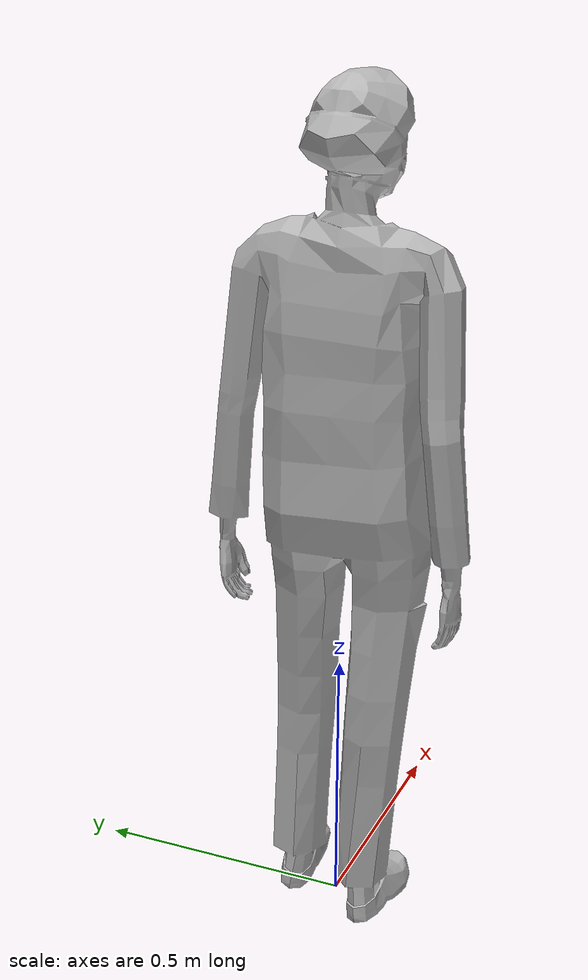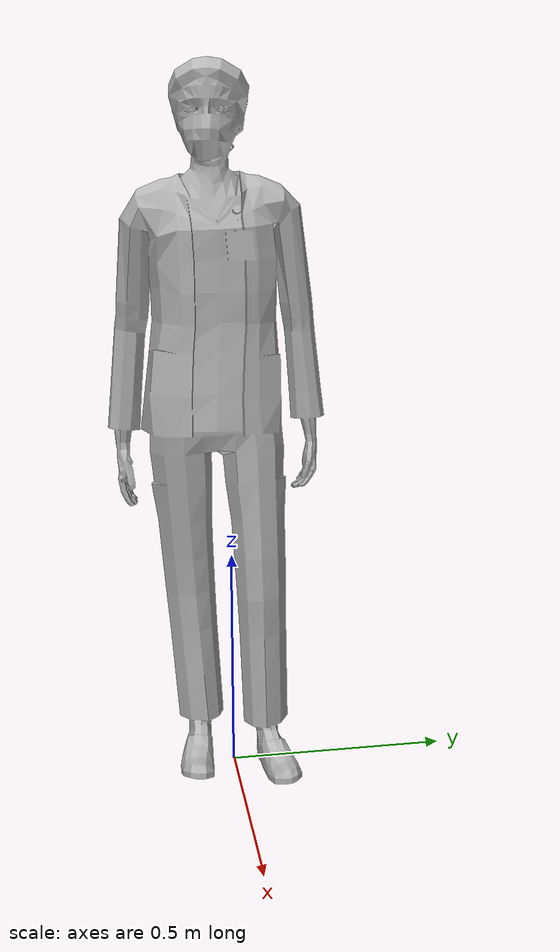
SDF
<?xml version='1.0' encoding='utf-8'?>
<sdf version="1.6">
  <model name="OpScrubs">
   <static>true</static>
    <link name="body">
      <pose>0 0 0 0 0 0</pose>

      <visual name="visual">
        <geometry>
          <mesh>
            <uri>model://OpScrubs/meshes/OpScrubs.obj</uri>
          </mesh>
        </geometry>
      </visual>

      <collision name="collision">
        <geometry>
          <mesh>
            <uri>model://OpScrubs/meshes/OpScrubs_Col.obj</uri>
          </mesh>
        </geometry>
      </collision>

    </link>
  </model>
</sdf>
